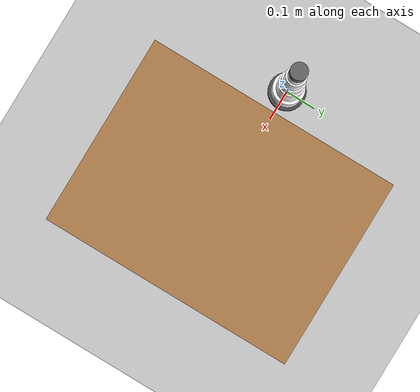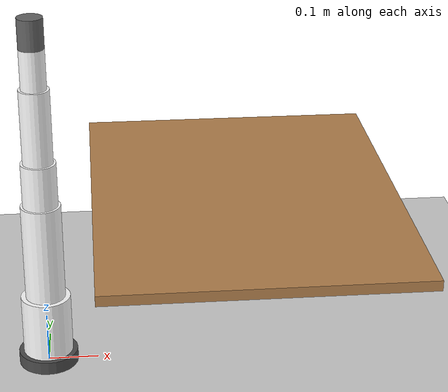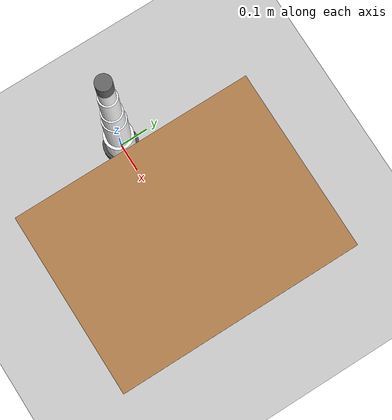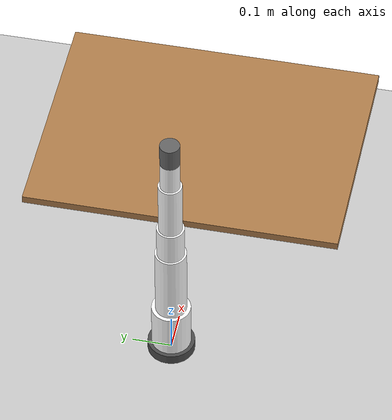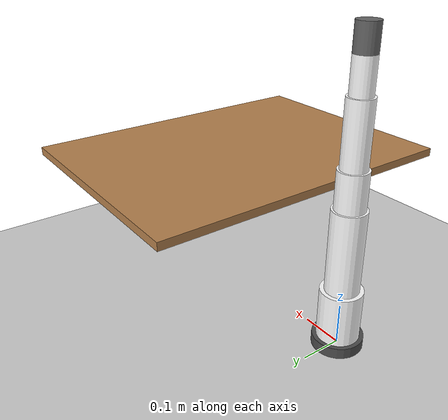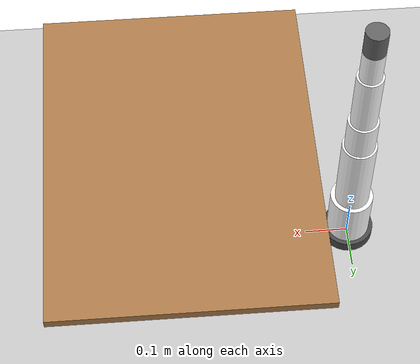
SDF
<?xml version="1.0" ?>
<sdf version="1.9">
  <world name="kettle_world">
    <!-- Physics settings -->
    <physics name="default_physics" type="dart">
      <max_step_size>0.001</max_step_size>
      <real_time_factor>1.0</real_time_factor>
      <real_time_update_rate>1000</real_time_update_rate>
    </physics>

    <!-- Plugins -->
    <plugin
      filename="gz-sim-physics-system"
      name="gz::sim::systems::Physics">
    </plugin>
    <plugin
      filename="gz-sim-scene-broadcaster-system"
      name="gz::sim::systems::SceneBroadcaster">
    </plugin>
    <plugin
      filename="gz-sim-user-commands-system"
      name="gz::sim::systems::UserCommands">
    </plugin>
    <plugin
      filename="gz-sim-sensors-system"
      name="gz::sim::systems::Sensors">
      <render_engine>ogre2</render_engine>
    </plugin>
    <plugin
      filename="gz-sim-forcetorque-system"
      name="gz::sim::systems::ForceTorque">
    </plugin>

    <!-- Lighting -->
    <light type="directional" name="sun">
      <cast_shadows>true</cast_shadows>
      <pose>0 0 10 0 0 0</pose>
      <diffuse>0.8 0.8 0.8 1</diffuse>
      <specular>0.2 0.2 0.2 1</specular>
      <direction>-0.5 0.1 -0.9</direction>
    </light>

    <!-- Ground plane -->
    <model name="ground_plane">
      <static>true</static>
      <link name="link">
        <collision name="collision">
          <geometry>
            <plane>
              <normal>0 0 1</normal>
              <size>100 100</size>
            </plane>
          </geometry>
        </collision>
        <visual name="visual">
          <geometry>
            <plane>
              <normal>0 0 1</normal>
              <size>100 100</size>
            </plane>
          </geometry>
          <material>
            <ambient>0.8 0.8 0.8 1</ambient>
            <diffuse>0.8 0.8 0.8 1</diffuse>
          </material>
        </visual>
      </link>
    </model>

    <!-- Lite6 Robot Arm -->
    <model name="lite6">
      <pose>0 0 0 0 0 0</pose>

      <!-- Base link (fixed to ground) -->
      <link name="base_link">
        <inertial>
          <mass>2.0</mass>
          <inertia>
            <ixx>0.01</ixx>
            <iyy>0.01</iyy>
            <izz>0.01</izz>
          </inertia>
        </inertial>
        <collision name="collision">
          <geometry>
            <cylinder>
              <radius>0.06</radius>
              <length>0.05</length>
            </cylinder>
          </geometry>
        </collision>
        <visual name="visual">
          <geometry>
            <cylinder>
              <radius>0.06</radius>
              <length>0.05</length>
            </cylinder>
          </geometry>
          <material>
            <ambient>0.2 0.2 0.2 1</ambient>
            <diffuse>0.3 0.3 0.3 1</diffuse>
          </material>
        </visual>
      </link>

      <!-- Link 1 -->
      <link name="link1">
        <pose relative_to="joint1">0 0 0.0615 0 0 0</pose>
        <inertial>
          <mass>1.5</mass>
          <inertia>
            <ixx>0.005</ixx>
            <iyy>0.005</iyy>
            <izz>0.003</izz>
          </inertia>
        </inertial>
        <collision name="collision">
          <geometry>
            <cylinder>
              <radius>0.05</radius>
              <length>0.123</length>
            </cylinder>
          </geometry>
        </collision>
        <visual name="visual">
          <geometry>
            <cylinder>
              <radius>0.05</radius>
              <length>0.123</length>
            </cylinder>
          </geometry>
          <material>
            <ambient>0.9 0.9 0.9 1</ambient>
            <diffuse>1.0 1.0 1.0 1</diffuse>
          </material>
        </visual>
      </link>

      <joint name="joint1" type="revolute">
        <parent>base_link</parent>
        <child>link1</child>
        <pose relative_to="base_link">0 0 0.025 0 0 0</pose>
        <axis>
          <xyz>0 0 1</xyz>
          <limit>
            <lower>-6.2832</lower>
            <upper>6.2832</upper>
            <effort>50</effort>
            <velocity>3.14</velocity>
          </limit>
          <dynamics>
            <damping>0.5</damping>
            <friction>0.1</friction>
          </dynamics>
        </axis>
      </joint>

      <!-- Link 2 -->
      <link name="link2">
        <pose relative_to="joint2">0 0 0.1 0 0 0</pose>
        <inertial>
          <mass>1.2</mass>
          <inertia>
            <ixx>0.008</ixx>
            <iyy>0.008</iyy>
            <izz>0.002</izz>
          </inertia>
        </inertial>
        <collision name="collision">
          <geometry>
            <cylinder>
              <radius>0.04</radius>
              <length>0.2</length>
            </cylinder>
          </geometry>
        </collision>
        <visual name="visual">
          <geometry>
            <cylinder>
              <radius>0.04</radius>
              <length>0.2</length>
            </cylinder>
          </geometry>
          <material>
            <ambient>0.9 0.9 0.9 1</ambient>
            <diffuse>1.0 1.0 1.0 1</diffuse>
          </material>
        </visual>
      </link>

      <joint name="joint2" type="revolute">
        <parent>link1</parent>
        <child>link2</child>
        <pose relative_to="link1">0 0 0.0615 0 0 0</pose>
        <axis>
          <xyz>0 1 0</xyz>
          <limit>
            <lower>-2.059</lower>
            <upper>2.094</upper>
            <effort>50</effort>
            <velocity>3.14</velocity>
          </limit>
          <dynamics>
            <damping>0.5</damping>
            <friction>0.1</friction>
          </dynamics>
        </axis>
      </joint>

      <!-- Link 3 -->
      <link name="link3">
        <pose relative_to="joint3">0 0 0.045 0 0 0</pose>
        <inertial>
          <mass>0.8</mass>
          <inertia>
            <ixx>0.002</ixx>
            <iyy>0.002</iyy>
            <izz>0.001</izz>
          </inertia>
        </inertial>
        <collision name="collision">
          <geometry>
            <cylinder>
              <radius>0.035</radius>
              <length>0.09</length>
            </cylinder>
          </geometry>
        </collision>
        <visual name="visual">
          <geometry>
            <cylinder>
              <radius>0.035</radius>
              <length>0.09</length>
            </cylinder>
          </geometry>
          <material>
            <ambient>0.9 0.9 0.9 1</ambient>
            <diffuse>1.0 1.0 1.0 1</diffuse>
          </material>
        </visual>
      </link>

      <joint name="joint3" type="revolute">
        <parent>link2</parent>
        <child>link3</child>
        <pose relative_to="link2">0 0 0.1 0 0 0</pose>
        <axis>
          <xyz>0 1 0</xyz>
          <limit>
            <lower>-0.192</lower>
            <upper>3.927</upper>
            <effort>30</effort>
            <velocity>3.14</velocity>
          </limit>
          <dynamics>
            <damping>0.3</damping>
            <friction>0.1</friction>
          </dynamics>
        </axis>
      </joint>

      <!-- Link 4 -->
      <link name="link4">
        <pose relative_to="joint4">0 0 0.075 0 0 0</pose>
        <inertial>
          <mass>0.6</mass>
          <inertia>
            <ixx>0.002</ixx>
            <iyy>0.002</iyy>
            <izz>0.0008</izz>
          </inertia>
        </inertial>
        <collision name="collision">
          <geometry>
            <cylinder>
              <radius>0.03</radius>
              <length>0.15</length>
            </cylinder>
          </geometry>
        </collision>
        <visual name="visual">
          <geometry>
            <cylinder>
              <radius>0.03</radius>
              <length>0.15</length>
            </cylinder>
          </geometry>
          <material>
            <ambient>0.9 0.9 0.9 1</ambient>
            <diffuse>1.0 1.0 1.0 1</diffuse>
          </material>
        </visual>
      </link>

      <joint name="joint4" type="revolute">
        <parent>link3</parent>
        <child>link4</child>
        <pose relative_to="link3">0 0 0.045 0 0 0</pose>
        <axis>
          <xyz>0 0 1</xyz>
          <limit>
            <lower>-6.2832</lower>
            <upper>6.2832</upper>
            <effort>20</effort>
            <velocity>3.14</velocity>
          </limit>
          <dynamics>
            <damping>0.2</damping>
            <friction>0.1</friction>
          </dynamics>
        </axis>
      </joint>

      <!-- Link 5 -->
      <link name="link5">
        <pose relative_to="joint5">0 0 0.04 0 0 0</pose>
        <inertial>
          <mass>0.4</mass>
          <inertia>
            <ixx>0.0008</ixx>
            <iyy>0.0008</iyy>
            <izz>0.0004</izz>
          </inertia>
        </inertial>
        <collision name="collision">
          <geometry>
            <cylinder>
              <radius>0.025</radius>
              <length>0.08</length>
            </cylinder>
          </geometry>
        </collision>
        <visual name="visual">
          <geometry>
            <cylinder>
              <radius>0.025</radius>
              <length>0.08</length>
            </cylinder>
          </geometry>
          <material>
            <ambient>0.9 0.9 0.9 1</ambient>
            <diffuse>1.0 1.0 1.0 1</diffuse>
          </material>
        </visual>
      </link>

      <joint name="joint5" type="revolute">
        <parent>link4</parent>
        <child>link5</child>
        <pose relative_to="link4">0 0 0.075 0 0 0</pose>
        <axis>
          <xyz>0 1 0</xyz>
          <limit>
            <lower>-1.692</lower>
            <upper>3.141</upper>
            <effort>15</effort>
            <velocity>3.14</velocity>
          </limit>
          <dynamics>
            <damping>0.2</damping>
            <friction>0.1</friction>
          </dynamics>
        </axis>
      </joint>

      <!-- Link 6 (end effector with force sensor) -->
      <link name="link6">
        <pose relative_to="joint6">0 0 0.03 0 0 0</pose>
        <inertial>
          <mass>0.2</mass>
          <inertia>
            <ixx>0.0002</ixx>
            <iyy>0.0002</iyy>
            <izz>0.0002</izz>
          </inertia>
        </inertial>
        <collision name="collision">
          <geometry>
            <cylinder>
              <radius>0.025</radius>
              <length>0.06</length>
            </cylinder>
          </geometry>
        </collision>
        <visual name="visual">
          <geometry>
            <cylinder>
              <radius>0.025</radius>
              <length>0.06</length>
            </cylinder>
          </geometry>
          <material>
            <ambient>0.3 0.3 0.3 1</ambient>
            <diffuse>0.4 0.4 0.4 1</diffuse>
          </material>
        </visual>
        <!-- Force/Torque Sensor -->
        <sensor name="force_torque" type="force_torque">
          <always_on>true</always_on>
          <update_rate>100</update_rate>
          <visualize>true</visualize>
          <force_torque>
            <frame>child</frame>
            <measure_direction>child_to_parent</measure_direction>
          </force_torque>
        </sensor>
      </link>

      <joint name="joint6" type="revolute">
        <parent>link5</parent>
        <child>link6</child>
        <pose relative_to="link5">0 0 0.04 0 0 0</pose>
        <axis>
          <xyz>0 0 1</xyz>
          <limit>
            <lower>-6.2832</lower>
            <upper>6.2832</upper>
            <effort>10</effort>
            <velocity>3.14</velocity>
          </limit>
          <dynamics>
            <damping>0.1</damping>
            <friction>0.05</friction>
          </dynamics>
        </axis>
        <!-- Attach force/torque sensor to this joint -->
        <sensor name="force_torque_joint" type="force_torque">
          <always_on>true</always_on>
          <update_rate>100</update_rate>
          <visualize>false</visualize>
          <force_torque>
            <frame>child</frame>
            <measure_direction>child_to_parent</measure_direction>
          </force_torque>
        </sensor>
      </joint>

      <!-- Joint Position Controllers -->
      <plugin
        filename="gz-sim-joint-position-controller-system"
        name="gz::sim::systems::JointPositionController">
        <joint_name>joint1</joint_name>
        <topic>/model/lite6/joint/joint1/0/cmd_pos</topic>
        <p_gain>100</p_gain>
        <i_gain>0.1</i_gain>
        <d_gain>10</d_gain>
        <i_max>1</i_max>
        <i_min>-1</i_min>
        <cmd_max>50</cmd_max>
        <cmd_min>-50</cmd_min>
      </plugin>

      <plugin
        filename="gz-sim-joint-position-controller-system"
        name="gz::sim::systems::JointPositionController">
        <joint_name>joint2</joint_name>
        <topic>/model/lite6/joint/joint2/0/cmd_pos</topic>
        <p_gain>100</p_gain>
        <i_gain>0.1</i_gain>
        <d_gain>10</d_gain>
        <i_max>1</i_max>
        <i_min>-1</i_min>
        <cmd_max>50</cmd_max>
        <cmd_min>-50</cmd_min>
      </plugin>

      <plugin
        filename="gz-sim-joint-position-controller-system"
        name="gz::sim::systems::JointPositionController">
        <joint_name>joint3</joint_name>
        <topic>/model/lite6/joint/joint3/0/cmd_pos</topic>
        <p_gain>80</p_gain>
        <i_gain>0.1</i_gain>
        <d_gain>8</d_gain>
        <i_max>1</i_max>
        <i_min>-1</i_min>
        <cmd_max>30</cmd_max>
        <cmd_min>-30</cmd_min>
      </plugin>

      <plugin
        filename="gz-sim-joint-position-controller-system"
        name="gz::sim::systems::JointPositionController">
        <joint_name>joint4</joint_name>
        <topic>/model/lite6/joint/joint4/0/cmd_pos</topic>
        <p_gain>50</p_gain>
        <i_gain>0.1</i_gain>
        <d_gain>5</d_gain>
        <i_max>1</i_max>
        <i_min>-1</i_min>
        <cmd_max>20</cmd_max>
        <cmd_min>-20</cmd_min>
      </plugin>

      <plugin
        filename="gz-sim-joint-position-controller-system"
        name="gz::sim::systems::JointPositionController">
        <joint_name>joint5</joint_name>
        <topic>/model/lite6/joint/joint5/0/cmd_pos</topic>
        <p_gain>40</p_gain>
        <i_gain>0.1</i_gain>
        <d_gain>4</d_gain>
        <i_max>1</i_max>
        <i_min>-1</i_min>
        <cmd_max>15</cmd_max>
        <cmd_min>-15</cmd_min>
      </plugin>

      <plugin
        filename="gz-sim-joint-position-controller-system"
        name="gz::sim::systems::JointPositionController">
        <joint_name>joint6</joint_name>
        <topic>/model/lite6/joint/joint6/0/cmd_pos</topic>
        <p_gain>30</p_gain>
        <i_gain>0.1</i_gain>
        <d_gain>3</d_gain>
        <i_max>1</i_max>
        <i_min>-1</i_min>
        <cmd_max>10</cmd_max>
        <cmd_min>-10</cmd_min>
      </plugin>

      <!-- Joint State Publisher -->
      <plugin
        filename="gz-sim-joint-state-publisher-system"
        name="gz::sim::systems::JointStatePublisher">
        <joint_name>joint1</joint_name>
        <joint_name>joint2</joint_name>
        <joint_name>joint3</joint_name>
        <joint_name>joint4</joint_name>
        <joint_name>joint5</joint_name>
        <joint_name>joint6</joint_name>
      </plugin>
    </model>

    <!-- Table (work surface) -->
    <model name="table">
      <static>true</static>
      <pose>0.4 0 0.35 0 0 0</pose>
      <link name="link">
        <collision name="collision">
          <geometry>
            <box>
              <size>0.6 0.8 0.02</size>
            </box>
          </geometry>
        </collision>
        <visual name="visual">
          <geometry>
            <box>
              <size>0.6 0.8 0.02</size>
            </box>
          </geometry>
          <material>
            <ambient>0.6 0.4 0.2 1</ambient>
            <diffuse>0.7 0.5 0.3 1</diffuse>
          </material>
        </visual>
      </link>
    </model>

  </world>
</sdf>
